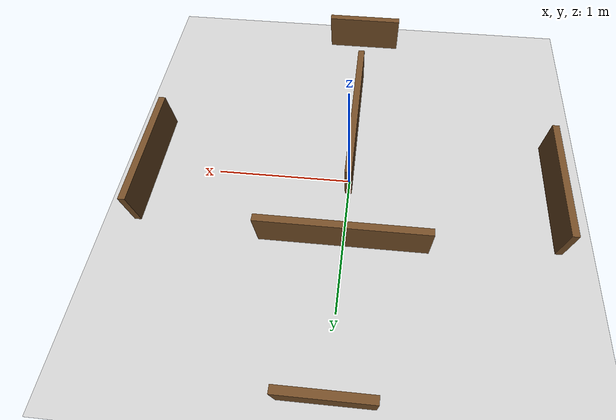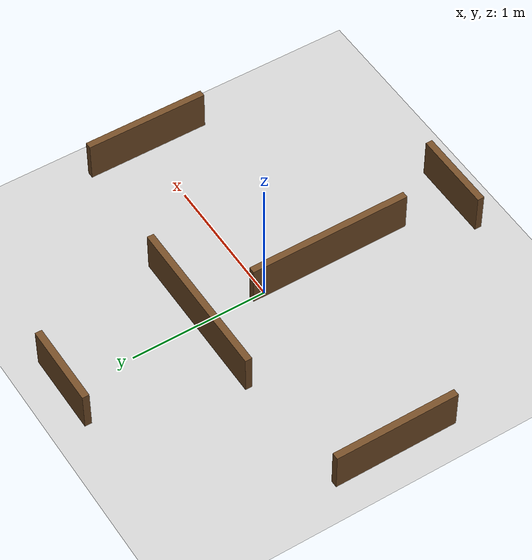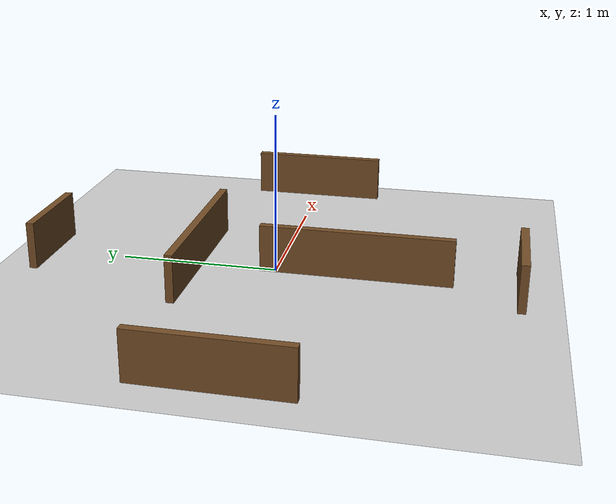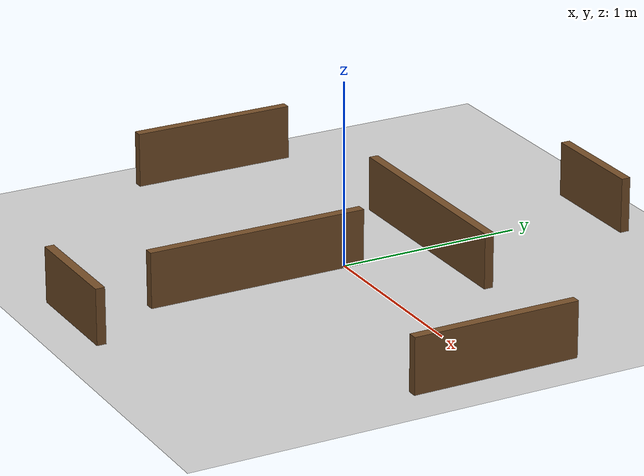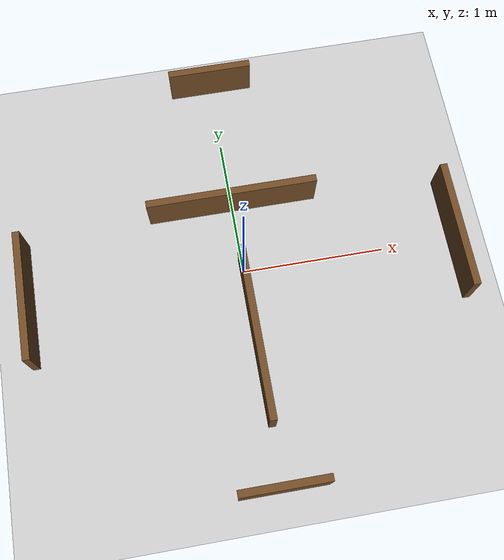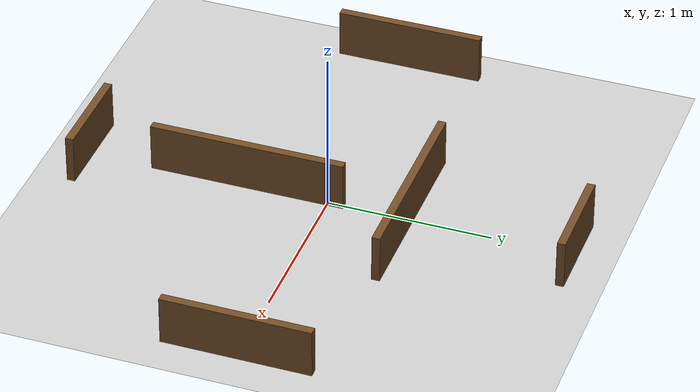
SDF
<?xml version="1.0" ?>
<sdf version="1.6">
  <world name="default">
    <light name="sun" type="directional">
      <cast_shadows>1</cast_shadows>
      <pose>0 0 10 0 0 0</pose>
      <diffuse>0.8 0.8 0.8 1</diffuse>
      <specular>0.2 0.2 0.2 1</specular>
      <attenuation>
        <range>1000</range>
        <constant>0.9</constant>
        <linear>0.01</linear>
        <quadratic>0.001</quadratic>
      </attenuation>
      <direction>-0.5 0.1 -0.9</direction>
    </light>

    <model name="ground_plane">
      <static>1</static>
      <link name="link">
        <collision name="collision">
          <geometry>
            <plane>
              <normal>0 0 1</normal>
              <size>100 100</size>
            </plane>
          </geometry>
        </collision>
        <visual name="visual">
          <cast_shadows>0</cast_shadows>
          <geometry>
            <plane>
              <normal>0 0 1</normal>
              <size>100 100</size>
            </plane>
          </geometry>
          <material>
            <script>
              <uri>file://media/materials/scripts/gazebo.material</uri>
              <name>Gazebo/Grey</name>
            </script>
          </material>
        </visual>
      </link>
    </model>

    <gravity>0 0 -9.8</gravity>
    <physics name="default_physics" default="0" type="ode">
      <max_step_size>0.001</max_step_size>
      <real_time_factor>1</real_time_factor>
      <real_time_update_rate>1000</real_time_update_rate>
    </physics>
    <scene>
      <ambient>0.4 0.4 0.4 1</ambient>
      <background>0.7 0.7 0.7 1</background>
      <shadows>1</shadows>
    </scene>

    <!-- wall60cm: paret curta nord -->
    <model name="wall60cm_1">
      <pose>0.0 1.5 0.15 0 0 0</pose>
      <static>true</static>
      <link name="link">
        <collision name="collision">
          <geometry><box><size>0.6 0.05 0.3</size></box></geometry>
        </collision>
        <visual name="visual">
          <geometry><box><size>0.6 0.05 0.3</size></box></geometry>
          <material>
            <ambient>0.45 0.30 0.15 1</ambient>
            <diffuse>0.45 0.30 0.15 1</diffuse>
          </material>
        </visual>
      </link>
    </model>

    <!-- wall60cm: paret curta sud -->
    <model name="wall60cm_2">
      <pose>0.0 -1.5 0.15 0 0 0</pose>
      <static>true</static>
      <link name="link">
        <collision name="collision">
          <geometry><box><size>0.6 0.05 0.3</size></box></geometry>
        </collision>
        <visual name="visual">
          <geometry><box><size>0.6 0.05 0.3</size></box></geometry>
          <material>
            <ambient>0.45 0.30 0.15 1</ambient>
            <diffuse>0.45 0.30 0.15 1</diffuse>
          </material>
        </visual>
      </link>
    </model>

    <!-- wall90cm: paret mitja est -->
    <model name="wall90cm_1">
      <pose>1.5 0.0 0.15 0 0 1.5708</pose>
      <static>true</static>
      <link name="link">
        <collision name="collision">
          <geometry><box><size>0.9 0.05 0.3</size></box></geometry>
        </collision>
        <visual name="visual">
          <geometry><box><size>0.9 0.05 0.3</size></box></geometry>
          <material>
            <ambient>0.45 0.30 0.15 1</ambient>
            <diffuse>0.45 0.30 0.15 1</diffuse>
          </material>
        </visual>
      </link>
    </model>

    <!-- wall90cm: paret mitja oest -->
    <model name="wall90cm_2">
      <pose>-1.5 0.0 0.15 0 0 1.5708</pose>
      <static>true</static>
      <link name="link">
        <collision name="collision">
          <geometry><box><size>0.9 0.05 0.3</size></box></geometry>
        </collision>
        <visual name="visual">
          <geometry><box><size>0.9 0.05 0.3</size></box></geometry>
          <material>
            <ambient>0.45 0.30 0.15 1</ambient>
            <diffuse>0.45 0.30 0.15 1</diffuse>
          </material>
        </visual>
      </link>
    </model>

    <!-- wall120cm: paret llarga interior -->
    <model name="wall120cm_1">
      <pose>0.0 0.5 0.15 0 0 0</pose>
      <static>true</static>
      <link name="link">
        <collision name="collision">
          <geometry><box><size>1.2 0.05 0.3</size></box></geometry>
        </collision>
        <visual name="visual">
          <geometry><box><size>1.2 0.05 0.3</size></box></geometry>
          <material>
            <ambient>0.45 0.30 0.15 1</ambient>
            <diffuse>0.45 0.30 0.15 1</diffuse>
          </material>
        </visual>
      </link>
    </model>

    <!-- wall120cm: paret llarga interior 2 -->
    <model name="wall120cm_2">
      <pose>0.0 -0.5 0.15 0 0 1.5708</pose>
      <static>true</static>
      <link name="link">
        <collision name="collision">
          <geometry><box><size>1.2 0.05 0.3</size></box></geometry>
        </collision>
        <visual name="visual">
          <geometry><box><size>1.2 0.05 0.3</size></box></geometry>
          <material>
            <ambient>0.45 0.30 0.15 1</ambient>
            <diffuse>0.45 0.30 0.15 1</diffuse>
          </material>
        </visual>
      </link>
    </model>

  </world>
</sdf>
